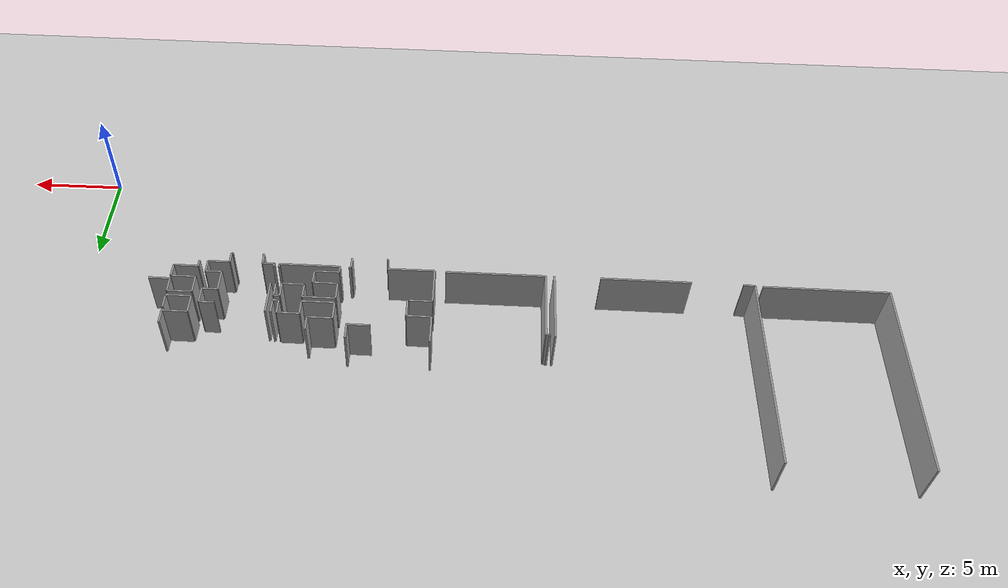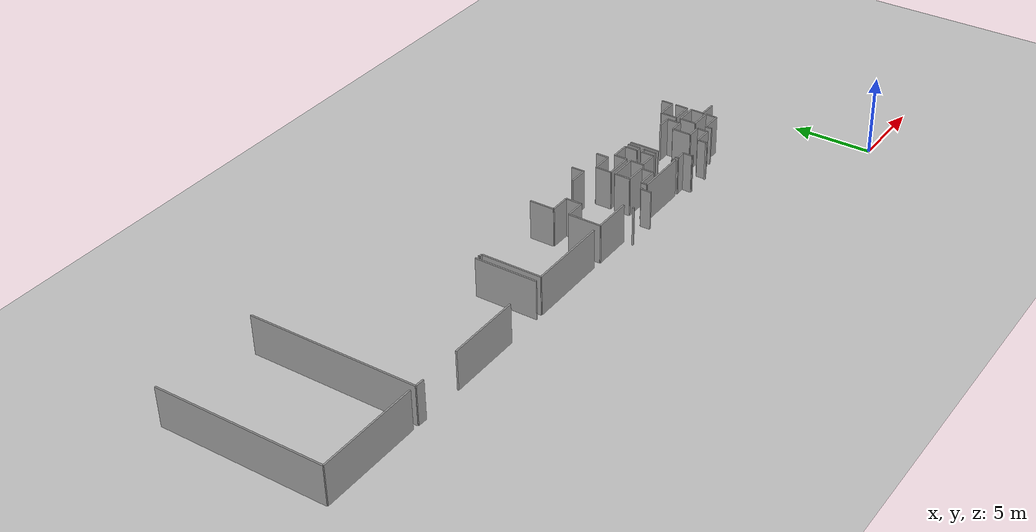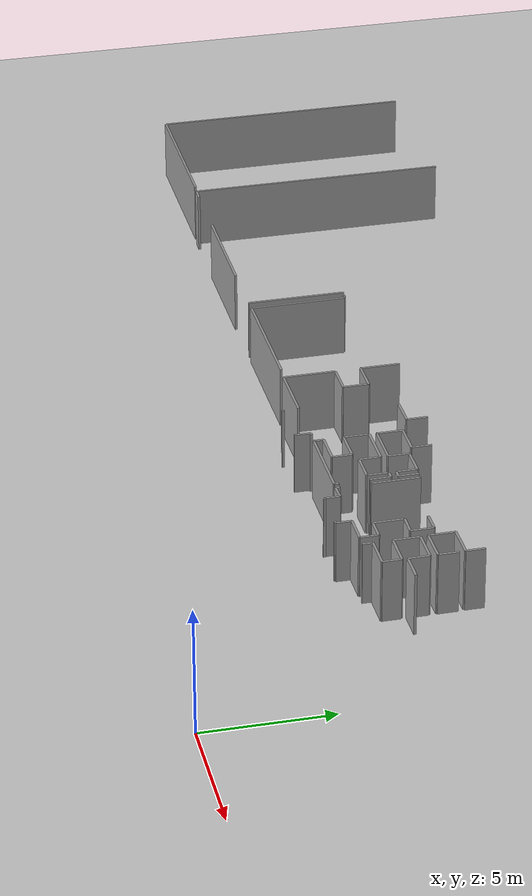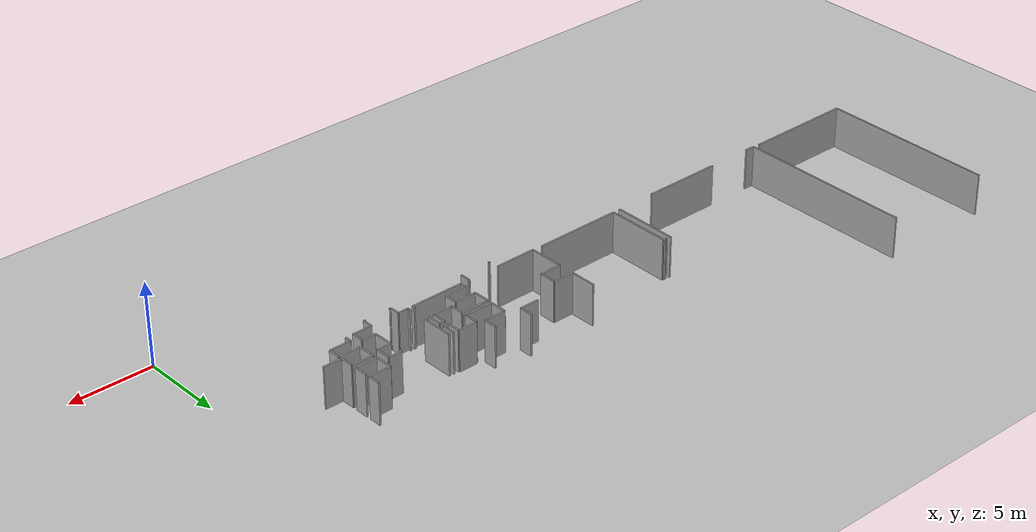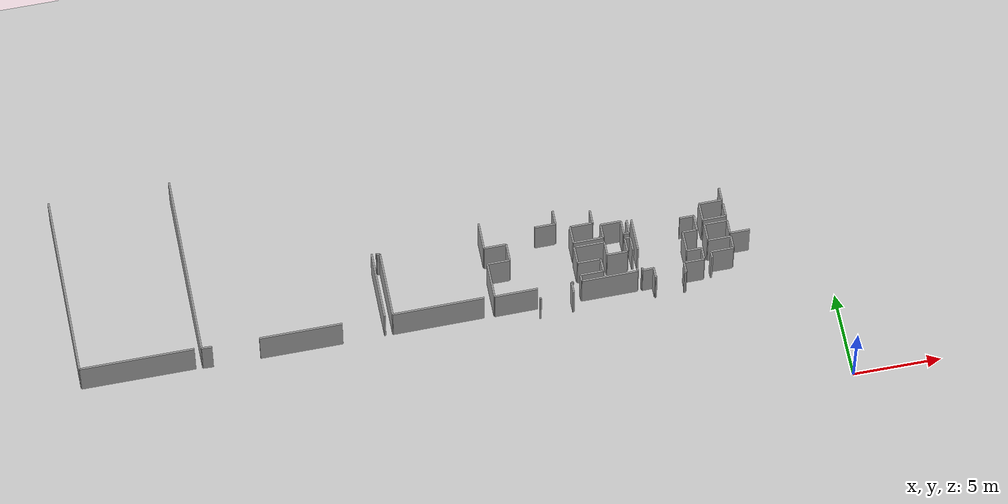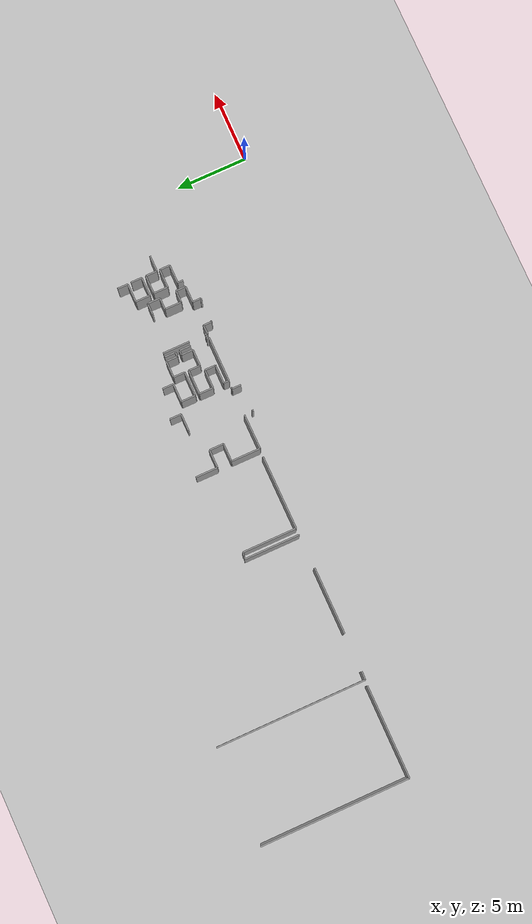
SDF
<sdf version="1.6">
 <world name="default">
  <model name="ground_plane">
   <static>1</static>
   <link name="link">
    <collision name="collision">
     <geometry><plane><normal>0 0 1</normal><size>100 100</size></plane></geometry>
     <surface><friction><ode><mu>100</mu><mu2>50</mu2></ode></friction></surface>
    </collision>
    <visual name="visual">
     <cast_shadows>0</cast_shadows>
     <geometry><plane><normal>0 0 1</normal><size>100 100</size></plane></geometry>
     <material>
      <script><uri>file://media/materials/scripts/gazebo.material</uri><name>Gazebo/Grey</name></script>
     </material>
    </visual>
   </link>
  </model>
  <model name="50052750">
   <static>1</static>
   <link name="Wall_20">
    <collision name="Wall_20_Collision">
     <geometry><box><size>10.5104266023 0.1 2.5</size></box></geometry>
     <pose>5.25521330114 0 1.25 0 0 0</pose>
    </collision>
    <visual name="Wall_20_Visual">
     <pose>5.25521330114 0 1.25 0 0 0</pose>
     <geometry><box><size>10.5104266023 0.1 2.5</size></box></geometry>
     <material>
      <script><uri>file://media/materials/scripts/gazebo.material</uri><name>Gazebo/Grey</name></script>
      <ambient>1 1 1 1</ambient>
     </material>
    </visual>
    <pose>0.0762039267883 -25.0130499225 0 0 0 1.57079632679</pose>
   </link>
   <link name="Wall_28">
    <collision name="Wall_28_Collision">
     <geometry><box><size>6.47669910417 0.1 2.5</size></box></geometry>
     <pose>3.23834955209 0 1.25 0 0 0</pose>
    </collision>
    <visual name="Wall_28_Visual">
     <pose>3.23834955209 0 1.25 0 0 0</pose>
     <geometry><box><size>6.47669910417 0.1 2.5</size></box></geometry>
     <material>
      <script><uri>file://media/materials/scripts/gazebo.material</uri><name>Gazebo/Grey</name></script>
      <ambient>1 1 1 1</ambient>
     </material>
    </visual>
    <pose>6.55290267107 -25.0152090337 0 0 0 3.14125928759</pose>
   </link>
   <link name="Wall_29">
    <collision name="Wall_29_Collision">
     <geometry><box><size>10.5544978733 0.1 2.5</size></box></geometry>
     <pose>5.27724893664 0 1.25 0 0 0</pose>
    </collision>
    <visual name="Wall_29_Visual">
     <pose>5.27724893664 0 1.25 0 0 0</pose>
     <geometry><box><size>10.5544978733 0.1 2.5</size></box></geometry>
     <material>
      <script><uri>file://media/materials/scripts/gazebo.material</uri><name>Gazebo/Grey</name></script>
      <ambient>1 1 1 1</ambient>
     </material>
    </visual>
    <pose>6.95233825399 -25.0538190233 0 0 0 1.57079632679</pose>
   </link>
   <link name="Wall_42">
    <collision name="Wall_42_Collision">
     <geometry><box><size>3.94520429638 0.1 2.5</size></box></geometry>
     <pose>1.97260214819 0 1.25 0 0 0</pose>
    </collision>
    <visual name="Wall_42_Visual">
     <pose>1.97260214819 0 1.25 0 0 0</pose>
     <geometry><box><size>3.94520429638 0.1 2.5</size></box></geometry>
     <material>
      <script><uri>file://media/materials/scripts/gazebo.material</uri><name>Gazebo/Grey</name></script>
      <ambient>1 1 1 1</ambient>
     </material>
    </visual>
    <pose>17.3099759831 -21.1312218919 0 0 0 -1.57079632679</pose>
   </link>
   <link name="Wall_43">
    <collision name="Wall_43_Collision">
     <geometry><box><size>4.69606698833 0.1 2.5</size></box></geometry>
     <pose>2.34803349417 0 1.25 0 0 0</pose>
    </collision>
    <visual name="Wall_43_Visual">
     <pose>2.34803349417 0 1.25 0 0 0</pose>
     <geometry><box><size>4.69606698833 0.1 2.5</size></box></geometry>
     <material>
      <script><uri>file://media/materials/scripts/gazebo.material</uri><name>Gazebo/Grey</name></script>
      <ambient>1 1 1 1</ambient>
     </material>
    </visual>
    <pose>14.9079012041 -25.0764261882 0 0 0 3.14159265359</pose>
   </link>
   <link name="Wall_44">
    <collision name="Wall_44_Collision">
     <geometry><box><size>0.590124576314 0.1 2.5</size></box></geometry>
     <pose>0.295062288157 0 1.25 0 0 0</pose>
    </collision>
    <visual name="Wall_44_Visual">
     <pose>0.295062288157 0 1.25 0 0 0</pose>
     <geometry><box><size>0.590124576314 0.1 2.5</size></box></geometry>
     <material>
      <script><uri>file://media/materials/scripts/gazebo.material</uri><name>Gazebo/Grey</name></script>
      <ambient>1 1 1 1</ambient>
     </material>
    </visual>
    <pose>7.54202964079 -25.0764261882 0 0 0 3.10327413715</pose>
   </link>
   <link name="Wall_45">
    <collision name="Wall_45_Collision">
     <geometry><box><size>3.8260721575 0.1 2.5</size></box></geometry>
     <pose>1.91303607875 0 1.25 0 0 0</pose>
    </collision>
    <visual name="Wall_45_Visual">
     <pose>1.91303607875 0 1.25 0 0 0</pose>
     <geometry><box><size>3.8260721575 0.1 2.5</size></box></geometry>
     <material>
      <script><uri>file://media/materials/scripts/gazebo.material</uri><name>Gazebo/Grey</name></script>
      <ambient>1 1 1 1</ambient>
     </material>
    </visual>
    <pose>17.7722798056 -25.0535650102 0 0 0 1.57079632679</pose>
   </link>
   <link name="Wall_46">
    <collision name="Wall_46_Collision">
     <geometry><box><size>0.175777057792 0.1 2.5</size></box></geometry>
     <pose>0.0878885288959 0 1.25 0 0 0</pose>
    </collision>
    <visual name="Wall_46_Visual">
     <pose>0.0878885288959 0 1.25 0 0 0</pose>
     <geometry><box><size>0.175777057792 0.1 2.5</size></box></geometry>
     <material>
      <script><uri>file://media/materials/scripts/gazebo.material</uri><name>Gazebo/Grey</name></script>
      <ambient>1 1 1 1</ambient>
     </material>
    </visual>
    <pose>17.7722798056 -21.2274928527 0 0 0 3.14159265359</pose>
   </link>
   <link name="Wall_47">
    <collision name="Wall_47_Collision">
     <geometry><box><size>0.0798871165831 0.1 2.5</size></box></geometry>
     <pose>0.0399435582916 0 1.25 0 0 0</pose>
    </collision>
    <visual name="Wall_47_Visual">
     <pose>0.0399435582916 0 1.25 0 0 0</pose>
     <geometry><box><size>0.0798871165831 0.1 2.5</size></box></geometry>
     <material>
      <script><uri>file://media/materials/scripts/gazebo.material</uri><name>Gazebo/Grey</name></script>
      <ambient>1 1 1 1</ambient>
     </material>
    </visual>
    <pose>17.5965027478 -21.2274928527 0 0 0 1.57079632679</pose>
   </link>
   <link name="Wall_55">
    <collision name="Wall_55_Collision">
     <geometry><box><size>5.20264343984 0.1 2.5</size></box></geometry>
     <pose>2.60132171992 0 1.25 0 0 0</pose>
    </collision>
    <visual name="Wall_55_Visual">
     <pose>2.60132171992 0 1.25 0 0 0</pose>
     <geometry><box><size>5.20264343984 0.1 2.5</size></box></geometry>
     <material>
      <script><uri>file://media/materials/scripts/gazebo.material</uri><name>Gazebo/Grey</name></script>
      <ambient>1 1 1 1</ambient>
     </material>
    </visual>
    <pose>22.974848894 -25.0257505769 0 0 0 -3.13624641641</pose>
   </link>
   <link name="Wall_339">
    <collision name="Wall_339_Collision">
     <geometry><box><size>0.176920116694 0.1 2.5</size></box></geometry>
     <pose>0.0884600583468 0 1.25 0 0 0</pose>
    </collision>
    <visual name="Wall_339_Visual">
     <pose>0.0884600583468 0 1.25 0 0 0</pose>
     <geometry><box><size>0.176920116694 0.1 2.5</size></box></geometry>
     <material>
      <script><uri>file://media/materials/scripts/gazebo.material</uri><name>Gazebo/Grey</name></script>
      <ambient>1 1 1 1</ambient>
     </material>
    </visual>
    <pose>32.0086974082 -25.0638525403 0 0 0 1.57079632679</pose>
   </link>
   <link name="Wall_340">
    <collision name="Wall_340_Collision">
     <geometry><box><size>1.88338005057 0.1 2.5</size></box></geometry>
     <pose>0.941690025287 0 1.25 0 0 0</pose>
    </collision>
    <visual name="Wall_340_Visual">
     <pose>0.941690025287 0 1.25 0 0 0</pose>
     <geometry><box><size>1.88338005057 0.1 2.5</size></box></geometry>
     <material>
      <script><uri>file://media/materials/scripts/gazebo.material</uri><name>Gazebo/Grey</name></script>
      <ambient>1 1 1 1</ambient>
     </material>
    </visual>
    <pose>32.0086974082 -23.725965599 0 0 0 1.57079632679</pose>
   </link>
   <link name="Wall_346">
    <collision name="Wall_346_Collision">
     <geometry><box><size>0.814492970823 0.1 2.5</size></box></geometry>
     <pose>0.407246485411 0 1.25 0 0 0</pose>
    </collision>
    <visual name="Wall_346_Visual">
     <pose>0.407246485411 0 1.25 0 0 0</pose>
     <geometry><box><size>0.814492970823 0.1 2.5</size></box></geometry>
     <material>
      <script><uri>file://media/materials/scripts/gazebo.material</uri><name>Gazebo/Grey</name></script>
      <ambient>1 1 1 1</ambient>
     </material>
    </visual>
    <pose>34.6923456966 -22.2727567152 0 0 0 0.0</pose>
   </link>
   <link name="Wall_347">
    <collision name="Wall_347_Collision">
     <geometry><box><size>0.884092557289 0.1 2.5</size></box></geometry>
     <pose>0.442046278645 0 1.25 0 0 0</pose>
    </collision>
    <visual name="Wall_347_Visual">
     <pose>0.442046278645 0 1.25 0 0 0</pose>
     <geometry><box><size>0.884092557289 0.1 2.5</size></box></geometry>
     <material>
      <script><uri>file://media/materials/scripts/gazebo.material</uri><name>Gazebo/Grey</name></script>
      <ambient>1 1 1 1</ambient>
     </material>
    </visual>
    <pose>35.5068386674 -22.2727567152 0 0 0 -1.57079632679</pose>
   </link>
   <link name="Wall_348">
    <collision name="Wall_348_Collision">
     <geometry><box><size>0.827193625288 0.1 2.5</size></box></geometry>
     <pose>0.413596812644 0 1.25 0 0 0</pose>
    </collision>
    <visual name="Wall_348_Visual">
     <pose>0.413596812644 0 1.25 0 0 0</pose>
     <geometry><box><size>0.827193625288 0.1 2.5</size></box></geometry>
     <material>
      <script><uri>file://media/materials/scripts/gazebo.material</uri><name>Gazebo/Grey</name></script>
      <ambient>1 1 1 1</ambient>
     </material>
    </visual>
    <pose>35.5068386674 -23.1568492724 0 0 0 3.14159265359</pose>
   </link>
   <link name="Wall_349">
    <collision name="Wall_349_Collision">
     <geometry><box><size>1.18077984559 0.1 2.5</size></box></geometry>
     <pose>0.590389922793 0 1.25 0 0 0</pose>
    </collision>
    <visual name="Wall_349_Visual">
     <pose>0.590389922793 0 1.25 0 0 0</pose>
     <geometry><box><size>1.18077984559 0.1 2.5</size></box></geometry>
     <material>
      <script><uri>file://media/materials/scripts/gazebo.material</uri><name>Gazebo/Grey</name></script>
      <ambient>1 1 1 1</ambient>
     </material>
    </visual>
    <pose>34.6796450421 -23.1568492724 0 0 0 -1.57079632679</pose>
   </link>
   <link name="Wall_350">
    <collision name="Wall_350_Collision">
     <geometry><box><size>0.846244606985 0.1 2.5</size></box></geometry>
     <pose>0.423122303492 0 1.25 0 0 0</pose>
    </collision>
    <visual name="Wall_350_Visual">
     <pose>0.423122303492 0 1.25 0 0 0</pose>
     <geometry><box><size>0.846244606985 0.1 2.5</size></box></geometry>
     <material>
      <script><uri>file://media/materials/scripts/gazebo.material</uri><name>Gazebo/Grey</name></script>
      <ambient>1 1 1 1</ambient>
     </material>
    </visual>
    <pose>34.6796450421 -24.337629118 0 0 0 0.0</pose>
   </link>
   <link name="Wall_351">
    <collision name="Wall_351_Collision">
     <geometry><box><size>0.699171028283 0.1 2.5</size></box></geometry>
     <pose>0.349585514142 0 1.25 0 0 0</pose>
    </collision>
    <visual name="Wall_351_Visual">
     <pose>0.349585514142 0 1.25 0 0 0</pose>
     <geometry><box><size>0.699171028283 0.1 2.5</size></box></geometry>
     <material>
      <script><uri>file://media/materials/scripts/gazebo.material</uri><name>Gazebo/Grey</name></script>
      <ambient>1 1 1 1</ambient>
     </material>
    </visual>
    <pose>35.5258896491 -24.337629118 0 0 0 -1.57079632679</pose>
   </link>
   <link name="Wall_352">
    <collision name="Wall_352_Collision">
     <geometry><box><size>1.14915521597 0.1 2.5</size></box></geometry>
     <pose>0.574577607984 0 1.25 0 0 0</pose>
    </collision>
    <visual name="Wall_352_Visual">
     <pose>0.574577607984 0 1.25 0 0 0</pose>
     <geometry><box><size>1.14915521597 0.1 2.5</size></box></geometry>
     <material>
      <script><uri>file://media/materials/scripts/gazebo.material</uri><name>Gazebo/Grey</name></script>
      <ambient>1 1 1 1</ambient>
     </material>
    </visual>
    <pose>35.5258896491 -25.0368001463 0 0 0 3.14159265359</pose>
   </link>
   <link name="Wall_353">
    <collision name="Wall_353_Collision">
     <geometry><box><size>0.596803753297 0.1 2.5</size></box></geometry>
     <pose>0.298401876649 0 1.25 0 0 0</pose>
    </collision>
    <visual name="Wall_353_Visual">
     <pose>0.298401876649 0 1.25 0 0 0</pose>
     <geometry><box><size>0.596803753297 0.1 2.5</size></box></geometry>
     <material>
      <script><uri>file://media/materials/scripts/gazebo.material</uri><name>Gazebo/Grey</name></script>
      <ambient>1 1 1 1</ambient>
     </material>
    </visual>
    <pose>34.3767344331 -25.0368001463 0 0 0 -1.57079632679</pose>
   </link>
   <link name="Wall_354">
    <collision name="Wall_354_Collision">
     <geometry><box><size>0.105034412423 0.1 2.5</size></box></geometry>
     <pose>0.0525172062116 0 1.25 0 0 0</pose>
    </collision>
    <visual name="Wall_354_Visual">
     <pose>0.0525172062116 0 1.25 0 0 0</pose>
     <geometry><box><size>0.105034412423 0.1 2.5</size></box></geometry>
     <material>
      <script><uri>file://media/materials/scripts/gazebo.material</uri><name>Gazebo/Grey</name></script>
      <ambient>1 1 1 1</ambient>
     </material>
    </visual>
    <pose>34.3767344331 -25.6336038996 0 0 0 3.14159265359</pose>
   </link>
   <link name="Wall_355">
    <collision name="Wall_355_Collision">
     <geometry><box><size>0.0820462278421 0.1 2.5</size></box></geometry>
     <pose>0.0410231139211 0 1.25 0 0 0</pose>
    </collision>
    <visual name="Wall_355_Visual">
     <pose>0.0410231139211 0 1.25 0 0 0</pose>
     <geometry><box><size>0.0820462278421 0.1 2.5</size></box></geometry>
     <material>
      <script><uri>file://media/materials/scripts/gazebo.material</uri><name>Gazebo/Grey</name></script>
      <ambient>1 1 1 1</ambient>
     </material>
    </visual>
    <pose>32.7158698488 -25.6336038996 0 0 0 3.14159265359</pose>
   </link>
   <link name="Wall_356">
    <collision name="Wall_356_Collision">
     <geometry><box><size>0.588802340985 0.1 2.5</size></box></geometry>
     <pose>0.294401170492 0 1.25 0 0 0</pose>
    </collision>
    <visual name="Wall_356_Visual">
     <pose>0.294401170492 0 1.25 0 0 0</pose>
     <geometry><box><size>0.588802340985 0.1 2.5</size></box></geometry>
     <material>
      <script><uri>file://media/materials/scripts/gazebo.material</uri><name>Gazebo/Grey</name></script>
      <ambient>1 1 1 1</ambient>
     </material>
    </visual>
    <pose>32.6338236209 -25.6336038996 0 0 0 1.57079632679</pose>
   </link>
   <link name="Wall_357">
    <collision name="Wall_357_Collision">
     <geometry><box><size>0.625416438683 0.1 2.5</size></box></geometry>
     <pose>0.312708219342 0 1.25 0 0 0</pose>
    </collision>
    <visual name="Wall_357_Visual">
     <pose>0.312708219342 0 1.25 0 0 0</pose>
     <geometry><box><size>0.625416438683 0.1 2.5</size></box></geometry>
     <material>
      <script><uri>file://media/materials/scripts/gazebo.material</uri><name>Gazebo/Grey</name></script>
      <ambient>1 1 1 1</ambient>
     </material>
    </visual>
    <pose>32.6338236209 -25.0448015586 0 0 0 -3.11112666653</pose>
   </link>
   <link name="Wall_358">
    <collision name="Wall_358_Collision">
     <geometry><box><size>2.06195125235 0.1 2.5</size></box></geometry>
     <pose>1.03097562617 0 1.25 0 0 0</pose>
    </collision>
    <visual name="Wall_358_Visual">
     <pose>1.03097562617 0 1.25 0 0 0</pose>
     <geometry><box><size>2.06195125235 0.1 2.5</size></box></geometry>
     <material>
      <script><uri>file://media/materials/scripts/gazebo.material</uri><name>Gazebo/Grey</name></script>
      <ambient>1 1 1 1</ambient>
     </material>
    </visual>
    <pose>23.5597140321 -25.0699488545 0 0 0 1.57079632679</pose>
   </link>
   <link name="Wall_359">
    <collision name="Wall_359_Collision">
     <geometry><box><size>1.26866837448 0.1 2.5</size></box></geometry>
     <pose>0.634334187241 0 1.25 0 0 0</pose>
    </collision>
    <visual name="Wall_359_Visual">
     <pose>0.634334187241 0 1.25 0 0 0</pose>
     <geometry><box><size>1.26866837448 0.1 2.5</size></box></geometry>
     <material>
      <script><uri>file://media/materials/scripts/gazebo.material</uri><name>Gazebo/Grey</name></script>
      <ambient>1 1 1 1</ambient>
     </material>
    </visual>
    <pose>23.5597140321 -23.0079976021 0 0 0 0.0</pose>
   </link>
   <link name="Wall_360">
    <collision name="Wall_360_Collision">
     <geometry><box><size>1.00830495795 0.1 2.5</size></box></geometry>
     <pose>0.504152478977 0 1.25 0 0 0</pose>
    </collision>
    <visual name="Wall_360_Visual">
     <pose>0.504152478977 0 1.25 0 0 0</pose>
     <geometry><box><size>1.00830495795 0.1 2.5</size></box></geometry>
     <material>
      <script><uri>file://media/materials/scripts/gazebo.material</uri><name>Gazebo/Grey</name></script>
      <ambient>1 1 1 1</ambient>
     </material>
    </visual>
    <pose>24.8283824065 -23.0079976021 0 0 0 1.57079632679</pose>
   </link>
   <link name="Wall_361">
    <collision name="Wall_361_Collision">
     <geometry><box><size>1.27730481952 0.1 2.5</size></box></geometry>
     <pose>0.638652409759 0 1.25 0 0 0</pose>
    </collision>
    <visual name="Wall_361_Visual">
     <pose>0.638652409759 0 1.25 0 0 0</pose>
     <geometry><box><size>1.27730481952 0.1 2.5</size></box></geometry>
     <material>
      <script><uri>file://media/materials/scripts/gazebo.material</uri><name>Gazebo/Grey</name></script>
      <ambient>1 1 1 1</ambient>
     </material>
    </visual>
    <pose>24.8283824065 -21.9996926442 0 0 0 3.14159265359</pose>
   </link>
   <link name="Wall_362">
    <collision name="Wall_362_Collision">
     <geometry><box><size>1.56408559733 0.1 2.5</size></box></geometry>
     <pose>0.782042798665 0 1.25 0 0 0</pose>
    </collision>
    <visual name="Wall_362_Visual">
     <pose>0.782042798665 0 1.25 0 0 0</pose>
     <geometry><box><size>1.56408559733 0.1 2.5</size></box></geometry>
     <material>
      <script><uri>file://media/materials/scripts/gazebo.material</uri><name>Gazebo/Grey</name></script>
      <ambient>1 1 1 1</ambient>
     </material>
    </visual>
    <pose>23.551077587 -21.9996926442 0 0 0 1.57079632679</pose>
   </link>
   <link name="Wall_365">
    <collision name="Wall_365_Collision">
     <geometry><box><size>1.18713017282 0.1 2.5</size></box></geometry>
     <pose>0.593565086409 0 1.25 0 0 0</pose>
    </collision>
    <visual name="Wall_365_Visual">
     <pose>0.593565086409 0 1.25 0 0 0</pose>
     <geometry><box><size>1.18713017282 0.1 2.5</size></box></geometry>
     <material>
      <script><uri>file://media/materials/scripts/gazebo.material</uri><name>Gazebo/Grey</name></script>
      <ambient>1 1 1 1</ambient>
     </material>
    </visual>
    <pose>26.599107652 -21.2687699797 0 0 0 0.0</pose>
   </link>
   <link name="Wall_366">
    <collision name="Wall_366_Collision">
     <geometry><box><size>0.824907507484 0.1 2.5</size></box></geometry>
     <pose>0.412453753742 0 1.25 0 0 0</pose>
    </collision>
    <visual name="Wall_366_Visual">
     <pose>0.412453753742 0 1.25 0 0 0</pose>
     <geometry><box><size>0.824907507484 0.1 2.5</size></box></geometry>
     <material>
      <script><uri>file://media/materials/scripts/gazebo.material</uri><name>Gazebo/Grey</name></script>
      <ambient>1 1 1 1</ambient>
     </material>
    </visual>
    <pose>27.7862378248 -21.2687699797 0 0 0 1.57079632679</pose>
   </link>
   <link name="Wall_369">
    <collision name="Wall_369_Collision">
     <geometry><box><size>0.113162831281 0.1 2.5</size></box></geometry>
     <pose>0.0565814156403 0 1.25 0 0 0</pose>
    </collision>
    <visual name="Wall_369_Visual">
     <pose>0.0565814156403 0 1.25 0 0 0</pose>
     <geometry><box><size>0.113162831281 0.1 2.5</size></box></geometry>
     <material>
      <script><uri>file://media/materials/scripts/gazebo.material</uri><name>Gazebo/Grey</name></script>
      <ambient>1 1 1 1</ambient>
     </material>
    </visual>
    <pose>28.0647631772 -25.0324819238 0 0 0 3.14159265359</pose>
   </link>
   <link name="Wall_370">
    <collision name="Wall_370_Collision">
     <geometry><box><size>0.639096932665 0.1 2.5</size></box></geometry>
     <pose>0.319548466332 0 1.25 0 0 0</pose>
    </collision>
    <visual name="Wall_370_Visual">
     <pose>0.319548466332 0 1.25 0 0 0</pose>
     <geometry><box><size>0.639096932665 0.1 2.5</size></box></geometry>
     <material>
      <script><uri>file://media/materials/scripts/gazebo.material</uri><name>Gazebo/Grey</name></script>
      <ambient>1 1 1 1</ambient>
     </material>
    </visual>
    <pose>27.951600346 -25.0324819238 0 0 0 -1.57079632679</pose>
   </link>
   <link name="Wall_371">
    <collision name="Wall_371_Collision">
     <geometry><box><size>0.101732242262 0.1 2.5</size></box></geometry>
     <pose>0.0508661211312 0 1.25 0 0 0</pose>
    </collision>
    <visual name="Wall_371_Visual">
     <pose>0.0508661211312 0 1.25 0 0 0</pose>
     <geometry><box><size>0.101732242262 0.1 2.5</size></box></geometry>
     <material>
      <script><uri>file://media/materials/scripts/gazebo.material</uri><name>Gazebo/Grey</name></script>
      <ambient>1 1 1 1</ambient>
     </material>
    </visual>
    <pose>26.1144506776 -25.6715788565 0 0 0 3.14159265359</pose>
   </link>
   <link name="Wall_373">
    <collision name="Wall_373_Collision">
     <geometry><box><size>2.45305414606 0.1 2.5</size></box></geometry>
     <pose>1.22652707303 0 1.25 0 0 0</pose>
    </collision>
    <visual name="Wall_373_Visual">
     <pose>1.22652707303 0 1.25 0 0 0</pose>
     <geometry><box><size>2.45305414606 0.1 2.5</size></box></geometry>
     <material>
      <script><uri>file://media/materials/scripts/gazebo.material</uri><name>Gazebo/Grey</name></script>
      <ambient>1 1 1 1</ambient>
     </material>
    </visual>
    <pose>26.0127184354 -25.0543270495 0 0 0 -3.13522430228</pose>
   </link>
   <link name="Wall_374">
    <collision name="Wall_374_Collision">
     <geometry><box><size>1.02760995274 0.1 2.5</size></box></geometry>
     <pose>0.51380497637 0 1.25 0 0 0</pose>
    </collision>
    <visual name="Wall_374_Visual">
     <pose>0.51380497637 0 1.25 0 0 0</pose>
     <geometry><box><size>1.02760995274 0.1 2.5</size></box></geometry>
     <material>
      <script><uri>file://media/materials/scripts/gazebo.material</uri><name>Gazebo/Grey</name></script>
      <ambient>1 1 1 1</ambient>
     </material>
    </visual>
    <pose>35.9492024624 -22.6239298111 0 0 0 1.57079632679</pose>
   </link>
   <link name="Wall_375">
    <collision name="Wall_375_Collision">
     <geometry><box><size>1.30613530515 0.1 2.5</size></box></geometry>
     <pose>0.653067652576 0 1.25 0 0 0</pose>
    </collision>
    <visual name="Wall_375_Visual">
     <pose>0.653067652576 0 1.25 0 0 0</pose>
     <geometry><box><size>1.30613530515 0.1 2.5</size></box></geometry>
     <material>
      <script><uri>file://media/materials/scripts/gazebo.material</uri><name>Gazebo/Grey</name></script>
      <ambient>1 1 1 1</ambient>
     </material>
    </visual>
    <pose>35.9492024624 -21.5963198584 0 0 0 0.0</pose>
   </link>
   <link name="Wall_376">
    <collision name="Wall_376_Collision">
     <geometry><box><size>0.749084600329 0.1 2.5</size></box></geometry>
     <pose>0.374542300165 0 1.25 0 0 0</pose>
    </collision>
    <visual name="Wall_376_Visual">
     <pose>0.374542300165 0 1.25 0 0 0</pose>
     <geometry><box><size>0.749084600329 0.1 2.5</size></box></geometry>
     <material>
      <script><uri>file://media/materials/scripts/gazebo.material</uri><name>Gazebo/Grey</name></script>
      <ambient>1 1 1 1</ambient>
     </material>
    </visual>
    <pose>37.2553377676 -21.5963198584 0 0 0 1.57079632679</pose>
   </link>
   <link name="Wall_385">
    <collision name="Wall_385_Collision">
     <geometry><box><size>0.788837648804 0.1 2.5</size></box></geometry>
     <pose>0.394418824402 0 1.25 0 0 0</pose>
    </collision>
    <visual name="Wall_385_Visual">
     <pose>0.394418824402 0 1.25 0 0 0</pose>
     <geometry><box><size>0.788837648804 0.1 2.5</size></box></geometry>
     <material>
      <script><uri>file://media/materials/scripts/gazebo.material</uri><name>Gazebo/Grey</name></script>
      <ambient>1 1 1 1</ambient>
     </material>
    </visual>
    <pose>37.2746427623 -21.8258206845 0 0 0 -1.57079632679</pose>
   </link>
   <link name="Wall_386">
    <collision name="Wall_386_Collision">
     <geometry><box><size>1.32547272662 0.1 2.5</size></box></geometry>
     <pose>0.662736363308 0 1.25 0 0 0</pose>
    </collision>
    <visual name="Wall_386_Visual">
     <pose>0.662736363308 0 1.25 0 0 0</pose>
     <geometry><box><size>1.32547272662 0.1 2.5</size></box></geometry>
     <material>
      <script><uri>file://media/materials/scripts/gazebo.material</uri><name>Gazebo/Grey</name></script>
      <ambient>1 1 1 1</ambient>
     </material>
    </visual>
    <pose>37.2746427623 -22.6146583333 0 0 0 -3.13459775043</pose>
   </link>
   <link name="Wall_387">
    <collision name="Wall_387_Collision">
     <geometry><box><size>0.395371373487 0.1 2.5</size></box></geometry>
     <pose>0.197685686743 0 1.25 0 0 0</pose>
    </collision>
    <visual name="Wall_387_Visual">
     <pose>0.197685686743 0 1.25 0 0 0</pose>
     <geometry><box><size>0.395371373487 0.1 2.5</size></box></geometry>
     <material>
      <script><uri>file://media/materials/scripts/gazebo.material</uri><name>Gazebo/Grey</name></script>
      <ambient>1 1 1 1</ambient>
     </material>
    </visual>
    <pose>35.9842562687 -25.0547080691 0 0 0 1.57079632679</pose>
   </link>
   <link name="Wall_388">
    <collision name="Wall_388_Collision">
     <geometry><box><size>1.29584777504 0.1 2.5</size></box></geometry>
     <pose>0.647923887518 0 1.25 0 0 0</pose>
    </collision>
    <visual name="Wall_388_Visual">
     <pose>0.647923887518 0 1.25 0 0 0</pose>
     <geometry><box><size>1.29584777504 0.1 2.5</size></box></geometry>
     <material>
      <script><uri>file://media/materials/scripts/gazebo.material</uri><name>Gazebo/Grey</name></script>
      <ambient>1 1 1 1</ambient>
     </material>
    </visual>
    <pose>35.9842562687 -24.6593366956 0 0 0 0.0</pose>
   </link>
   <link name="Wall_389">
    <collision name="Wall_389_Collision">
     <geometry><box><size>0.730160625177 0.1 2.5</size></box></geometry>
     <pose>0.365080312589 0 1.25 0 0 0</pose>
    </collision>
    <visual name="Wall_389_Visual">
     <pose>0.365080312589 0 1.25 0 0 0</pose>
     <geometry><box><size>0.730160625177 0.1 2.5</size></box></geometry>
     <material>
      <script><uri>file://media/materials/scripts/gazebo.material</uri><name>Gazebo/Grey</name></script>
      <ambient>1 1 1 1</ambient>
     </material>
    </visual>
    <pose>37.2801040438 -24.6593366956 0 0 0 1.57079632679</pose>
   </link>
   <link name="Wall_390">
    <collision name="Wall_390_Collision">
     <geometry><box><size>1.30130905646 0.1 2.5</size></box></geometry>
     <pose>0.650654528228 0 1.25 0 0 0</pose>
    </collision>
    <visual name="Wall_390_Visual">
     <pose>0.650654528228 0 1.25 0 0 0</pose>
     <geometry><box><size>1.30130905646 0.1 2.5</size></box></geometry>
     <material>
      <script><uri>file://media/materials/scripts/gazebo.material</uri><name>Gazebo/Grey</name></script>
      <ambient>1 1 1 1</ambient>
     </material>
    </visual>
    <pose>37.2801040438 -23.9291760704 0 0 0 3.14159265359</pose>
   </link>
   <link name="Wall_391">
    <collision name="Wall_391_Collision">
     <geometry><box><size>1.01592535063 0.1 2.5</size></box></geometry>
     <pose>0.507962675317 0 1.25 0 0 0</pose>
    </collision>
    <visual name="Wall_391_Visual">
     <pose>0.507962675317 0 1.25 0 0 0</pose>
     <geometry><box><size>1.01592535063 0.1 2.5</size></box></geometry>
     <material>
      <script><uri>file://media/materials/scripts/gazebo.material</uri><name>Gazebo/Grey</name></script>
      <ambient>1 1 1 1</ambient>
     </material>
    </visual>
    <pose>35.9787949873 -23.9291760704 0 0 0 1.57079632679</pose>
   </link>
   <link name="Wall_392">
    <collision name="Wall_392_Collision">
     <geometry><box><size>1.30130905646 0.1 2.5</size></box></geometry>
     <pose>0.650654528228 0 1.25 0 0 0</pose>
    </collision>
    <visual name="Wall_392_Visual">
     <pose>0.650654528228 0 1.25 0 0 0</pose>
     <geometry><box><size>1.30130905646 0.1 2.5</size></box></geometry>
     <material>
      <script><uri>file://media/materials/scripts/gazebo.material</uri><name>Gazebo/Grey</name></script>
      <ambient>1 1 1 1</ambient>
     </material>
    </visual>
    <pose>35.9787949873 -22.9132507198 0 0 0 0.0</pose>
   </link>
   <link name="Wall_393">
    <collision name="Wall_393_Collision">
     <geometry><box><size>0.807253597778 0.1 2.5</size></box></geometry>
     <pose>0.403626798889 0 1.25 0 0 0</pose>
    </collision>
    <visual name="Wall_393_Visual">
     <pose>0.403626798889 0 1.25 0 0 0</pose>
     <geometry><box><size>0.807253597778 0.1 2.5</size></box></geometry>
     <material>
      <script><uri>file://media/materials/scripts/gazebo.material</uri><name>Gazebo/Grey</name></script>
      <ambient>1 1 1 1</ambient>
     </material>
    </visual>
    <pose>37.2801040438 -22.9132507198 0 0 0 -1.57079632679</pose>
   </link>
   <link name="Wall_394">
    <collision name="Wall_394_Collision">
     <geometry><box><size>1.12565900521 0.1 2.5</size></box></geometry>
     <pose>0.562829502604 0 1.25 0 0 0</pose>
    </collision>
    <visual name="Wall_394_Visual">
     <pose>0.562829502604 0 1.25 0 0 0</pose>
     <geometry><box><size>1.12565900521 0.1 2.5</size></box></geometry>
     <material>
      <script><uri>file://media/materials/scripts/gazebo.material</uri><name>Gazebo/Grey</name></script>
      <ambient>1 1 1 1</ambient>
     </material>
    </visual>
    <pose>37.2801040438 -23.7205043176 0 0 0 0.0</pose>
   </link>
   <link name="Wall_400">
    <collision name="Wall_400_Collision">
     <geometry><box><size>1.01021005612 0.1 2.5</size></box></geometry>
     <pose>0.505105028062 0 1.25 0 0 0</pose>
    </collision>
    <visual name="Wall_400_Visual">
     <pose>0.505105028062 0 1.25 0 0 0</pose>
     <geometry><box><size>1.01021005612 0.1 2.5</size></box></geometry>
     <material>
      <script><uri>file://media/materials/scripts/gazebo.material</uri><name>Gazebo/Grey</name></script>
      <ambient>1 1 1 1</ambient>
     </material>
    </visual>
    <pose>28.5442128833 -22.6277400074 0 0 0 1.57079632679</pose>
   </link>
   <link name="Wall_401">
    <collision name="Wall_401_Collision">
     <geometry><box><size>1.29584777504 0.1 2.5</size></box></geometry>
     <pose>0.647923887518 0 1.25 0 0 0</pose>
    </collision>
    <visual name="Wall_401_Visual">
     <pose>0.647923887518 0 1.25 0 0 0</pose>
     <geometry><box><size>1.29584777504 0.1 2.5</size></box></geometry>
     <material>
      <script><uri>file://media/materials/scripts/gazebo.material</uri><name>Gazebo/Grey</name></script>
      <ambient>1 1 1 1</ambient>
     </material>
    </visual>
    <pose>28.5442128833 -21.6175299513 0 0 0 0.0</pose>
   </link>
   <link name="Wall_402">
    <collision name="Wall_402_Collision">
     <geometry><box><size>0.779820184134 0.1 2.5</size></box></geometry>
     <pose>0.389910092067 0 1.25 0 0 0</pose>
    </collision>
    <visual name="Wall_402_Visual">
     <pose>0.389910092067 0 1.25 0 0 0</pose>
     <geometry><box><size>0.779820184134 0.1 2.5</size></box></geometry>
     <material>
      <script><uri>file://media/materials/scripts/gazebo.material</uri><name>Gazebo/Grey</name></script>
      <ambient>1 1 1 1</ambient>
     </material>
    </visual>
    <pose>29.8400606583 -21.6175299513 0 0 0 1.57079632679</pose>
   </link>
   <link name="Wall_407">
    <collision name="Wall_407_Collision">
     <geometry><box><size>0.788837648804 0.1 2.5</size></box></geometry>
     <pose>0.394418824402 0 1.25 0 0 0</pose>
    </collision>
    <visual name="Wall_407_Visual">
     <pose>0.394418824402 0 1.25 0 0 0</pose>
     <geometry><box><size>0.788837648804 0.1 2.5</size></box></geometry>
     <material>
      <script><uri>file://media/materials/scripts/gazebo.material</uri><name>Gazebo/Grey</name></script>
      <ambient>1 1 1 1</ambient>
     </material>
    </visual>
    <pose>31.7343632717 -21.8258206845 0 0 0 -1.57079632679</pose>
   </link>
   <link name="Wall_408">
    <collision name="Wall_408_Collision">
     <geometry><box><size>0.313833171823 0.1 2.5</size></box></geometry>
     <pose>0.156916585912 0 1.25 0 0 0</pose>
    </collision>
    <visual name="Wall_408_Visual">
     <pose>0.156916585912 0 1.25 0 0 0</pose>
     <geometry><box><size>0.313833171823 0.1 2.5</size></box></geometry>
     <material>
      <script><uri>file://media/materials/scripts/gazebo.material</uri><name>Gazebo/Grey</name></script>
      <ambient>1 1 1 1</ambient>
     </material>
    </visual>
    <pose>31.7343632717 -22.6146583333 0 0 0 3.14159265359</pose>
   </link>
   <link name="Wall_409">
    <collision name="Wall_409_Collision">
     <geometry><box><size>0.797220080751 0.1 2.5</size></box></geometry>
     <pose>0.398610040375 0 1.25 0 0 0</pose>
    </collision>
    <visual name="Wall_409_Visual">
     <pose>0.398610040375 0 1.25 0 0 0</pose>
     <geometry><box><size>0.797220080751 0.1 2.5</size></box></geometry>
     <material>
      <script><uri>file://media/materials/scripts/gazebo.material</uri><name>Gazebo/Grey</name></script>
      <ambient>1 1 1 1</ambient>
     </material>
    </visual>
    <pose>31.4205300999 -22.6146583333 0 0 0 1.57079632679</pose>
   </link>
   <link name="Wall_410">
    <collision name="Wall_410_Collision">
     <geometry><box><size>1.16668211913 0.1 2.5</size></box></geometry>
     <pose>0.583341059565 0 1.25 0 0 0</pose>
    </collision>
    <visual name="Wall_410_Visual">
     <pose>0.583341059565 0 1.25 0 0 0</pose>
     <geometry><box><size>1.16668211913 0.1 2.5</size></box></geometry>
     <material>
      <script><uri>file://media/materials/scripts/gazebo.material</uri><name>Gazebo/Grey</name></script>
      <ambient>1 1 1 1</ambient>
     </material>
    </visual>
    <pose>31.4205300999 -21.8174382526 0 0 0 3.14159265359</pose>
   </link>
   <link name="Wall_411">
    <collision name="Wall_411_Collision">
     <geometry><box><size>0.809666722126 0.1 2.5</size></box></geometry>
     <pose>0.404833361063 0 1.25 0 0 0</pose>
    </collision>
    <visual name="Wall_411_Visual">
     <pose>0.404833361063 0 1.25 0 0 0</pose>
     <geometry><box><size>0.809666722126 0.1 2.5</size></box></geometry>
     <material>
      <script><uri>file://media/materials/scripts/gazebo.material</uri><name>Gazebo/Grey</name></script>
      <ambient>1 1 1 1</ambient>
     </material>
    </visual>
    <pose>30.2538479808 -21.8174382526 0 0 0 -1.57079632679</pose>
   </link>
   <link name="Wall_412">
    <collision name="Wall_412_Collision">
     <geometry><box><size>1.70963521544 0.1 2.5</size></box></geometry>
     <pose>0.854817607718 0 1.25 0 0 0</pose>
    </collision>
    <visual name="Wall_412_Visual">
     <pose>0.854817607718 0 1.25 0 0 0</pose>
     <geometry><box><size>1.70963521544 0.1 2.5</size></box></geometry>
     <material>
      <script><uri>file://media/materials/scripts/gazebo.material</uri><name>Gazebo/Grey</name></script>
      <ambient>1 1 1 1</ambient>
     </material>
    </visual>
    <pose>30.2538479808 -22.6271049747 0 0 0 -3.14122121018</pose>
   </link>
   <link name="Wall_413">
    <collision name="Wall_413_Collision">
     <geometry><box><size>0.382035686299 0.1 2.5</size></box></geometry>
     <pose>0.191017843149 0 1.25 0 0 0</pose>
    </collision>
    <visual name="Wall_413_Visual">
     <pose>0.191017843149 0 1.25 0 0 0</pose>
     <geometry><box><size>0.382035686299 0.1 2.5</size></box></geometry>
     <material>
      <script><uri>file://media/materials/scripts/gazebo.material</uri><name>Gazebo/Grey</name></script>
      <ambient>1 1 1 1</ambient>
     </material>
    </visual>
    <pose>28.5350684121 -25.0559781346 0 0 0 1.57079632679</pose>
   </link>
   <link name="Wall_414">
    <collision name="Wall_414_Collision">
     <geometry><box><size>1.30359517426 0.1 2.5</size></box></geometry>
     <pose>0.65179758713 0 1.25 0 0 0</pose>
    </collision>
    <visual name="Wall_414_Visual">
     <pose>0.65179758713 0 1.25 0 0 0</pose>
     <geometry><box><size>1.30359517426 0.1 2.5</size></box></geometry>
     <material>
      <script><uri>file://media/materials/scripts/gazebo.material</uri><name>Gazebo/Grey</name></script>
      <ambient>1 1 1 1</ambient>
     </material>
    </visual>
    <pose>28.5350684121 -24.6739424483 0 0 0 0.0</pose>
   </link>
   <link name="Wall_415">
    <collision name="Wall_415_Collision">
     <geometry><box><size>0.768135582027 0.1 2.5</size></box></geometry>
     <pose>0.384067791013 0 1.25 0 0 0</pose>
    </collision>
    <visual name="Wall_415_Visual">
     <pose>0.384067791013 0 1.25 0 0 0</pose>
     <geometry><box><size>0.768135582027 0.1 2.5</size></box></geometry>
     <material>
      <script><uri>file://media/materials/scripts/gazebo.material</uri><name>Gazebo/Grey</name></script>
      <ambient>1 1 1 1</ambient>
     </material>
    </visual>
    <pose>29.8386635863 -24.6739424483 0 0 0 1.57079632679</pose>
   </link>
   <link name="Wall_416">
    <collision name="Wall_416_Collision">
     <geometry><box><size>1.30778639023 0.1 2.5</size></box></geometry>
     <pose>0.653893195116 0 1.25 0 0 0</pose>
    </collision>
    <visual name="Wall_416_Visual">
     <pose>0.653893195116 0 1.25 0 0 0</pose>
     <geometry><box><size>1.30778639023 0.1 2.5</size></box></geometry>
     <material>
      <script><uri>file://media/materials/scripts/gazebo.material</uri><name>Gazebo/Grey</name></script>
      <ambient>1 1 1 1</ambient>
     </material>
    </visual>
    <pose>29.8386635863 -23.9058068662 0 0 0 3.14159265359</pose>
   </link>
   <link name="Wall_417">
    <collision name="Wall_417_Collision">
     <geometry><box><size>0.992175126784 0.1 2.5</size></box></geometry>
     <pose>0.496087563392 0 1.25 0 0 0</pose>
    </collision>
    <visual name="Wall_417_Visual">
     <pose>0.496087563392 0 1.25 0 0 0</pose>
     <geometry><box><size>0.992175126784 0.1 2.5</size></box></geometry>
     <material>
      <script><uri>file://media/materials/scripts/gazebo.material</uri><name>Gazebo/Grey</name></script>
      <ambient>1 1 1 1</ambient>
     </material>
    </visual>
    <pose>28.5308771961 -23.9058068662 0 0 0 1.57079632679</pose>
   </link>
   <link name="Wall_418">
    <collision name="Wall_418_Collision">
     <geometry><box><size>1.71890657526 0.1 2.5</size></box></geometry>
     <pose>0.859453287628 0 1.25 0 0 0</pose>
    </collision>
    <visual name="Wall_418_Visual">
     <pose>0.859453287628 0 1.25 0 0 0</pose>
     <geometry><box><size>1.71890657526 0.1 2.5</size></box></geometry>
     <material>
      <script><uri>file://media/materials/scripts/gazebo.material</uri><name>Gazebo/Grey</name></script>
      <ambient>1 1 1 1</ambient>
     </material>
    </visual>
    <pose>28.5308771961 -22.9136317394 0 0 0 0.0</pose>
   </link>
   <link name="Wall_419">
    <collision name="Wall_419_Collision">
     <geometry><box><size>0.821986356957 0.1 2.5</size></box></geometry>
     <pose>0.410993178478 0 1.25 0 0 0</pose>
    </collision>
    <visual name="Wall_419_Visual">
     <pose>0.410993178478 0 1.25 0 0 0</pose>
     <geometry><box><size>0.821986356957 0.1 2.5</size></box></geometry>
     <material>
      <script><uri>file://media/materials/scripts/gazebo.material</uri><name>Gazebo/Grey</name></script>
      <ambient>1 1 1 1</ambient>
     </material>
    </visual>
    <pose>30.2497837714 -22.9136317394 0 0 0 -1.57079632679</pose>
   </link>
   <link name="Wall_420">
    <collision name="Wall_420_Collision">
     <geometry><box><size>1.16668211913 0.1 2.5</size></box></geometry>
     <pose>0.583341059565 0 1.25 0 0 0</pose>
    </collision>
    <visual name="Wall_420_Visual">
     <pose>0.583341059565 0 1.25 0 0 0</pose>
     <geometry><box><size>1.16668211913 0.1 2.5</size></box></geometry>
     <material>
      <script><uri>file://media/materials/scripts/gazebo.material</uri><name>Gazebo/Grey</name></script>
      <ambient>1 1 1 1</ambient>
     </material>
    </visual>
    <pose>30.2497837714 -23.7356180964 0 0 0 0.0</pose>
   </link>
   <link name="Wall_421">
    <collision name="Wall_421_Collision">
     <geometry><box><size>0.830368788904 0.1 2.5</size></box></geometry>
     <pose>0.415184394452 0 1.25 0 0 0</pose>
    </collision>
    <visual name="Wall_421_Visual">
     <pose>0.415184394452 0 1.25 0 0 0</pose>
     <geometry><box><size>0.830368788904 0.1 2.5</size></box></geometry>
     <material>
      <script><uri>file://media/materials/scripts/gazebo.material</uri><name>Gazebo/Grey</name></script>
      <ambient>1 1 1 1</ambient>
     </material>
    </visual>
    <pose>31.4164658905 -23.7356180964 0 0 0 1.57079632679</pose>
   </link>
   <link name="Wall_422">
    <collision name="Wall_422_Collision">
     <geometry><box><size>0.315484256904 0.1 2.5</size></box></geometry>
     <pose>0.157742128452 0 1.25 0 0 0</pose>
    </collision>
    <visual name="Wall_422_Visual">
     <pose>0.157742128452 0 1.25 0 0 0</pose>
     <geometry><box><size>0.315484256904 0.1 2.5</size></box></geometry>
     <material>
      <script><uri>file://media/materials/scripts/gazebo.material</uri><name>Gazebo/Grey</name></script>
      <ambient>1 1 1 1</ambient>
     </material>
    </visual>
    <pose>31.4164658905 -22.9052493075 0 0 0 0.0</pose>
   </link>
   <link name="Wall_423">
    <collision name="Wall_423_Collision">
     <geometry><box><size>0.801284290179 0.1 2.5</size></box></geometry>
     <pose>0.40064214509 0 1.25 0 0 0</pose>
    </collision>
    <visual name="Wall_423_Visual">
     <pose>0.40064214509 0 1.25 0 0 0</pose>
     <geometry><box><size>0.801284290179 0.1 2.5</size></box></geometry>
     <material>
      <script><uri>file://media/materials/scripts/gazebo.material</uri><name>Gazebo/Grey</name></script>
      <ambient>1 1 1 1</ambient>
     </material>
    </visual>
    <pose>31.7319501474 -22.9052493075 0 0 0 -1.57079632679</pose>
   </link>
   <link name="Wall_424">
    <collision name="Wall_424_Collision">
     <geometry><box><size>0.181238339212 0.1 2.5</size></box></geometry>
     <pose>0.0906191696058 0 1.25 0 0 0</pose>
    </collision>
    <visual name="Wall_424_Visual">
     <pose>0.0906191696058 0 1.25 0 0 0</pose>
     <geometry><box><size>0.181238339212 0.1 2.5</size></box></geometry>
     <material>
      <script><uri>file://media/materials/scripts/gazebo.material</uri><name>Gazebo/Grey</name></script>
      <ambient>1 1 1 1</ambient>
     </material>
    </visual>
    <pose>31.7319501474 -24.8680084485 0 0 0 -1.57079632679</pose>
   </link>
   <link name="Wall_425">
    <collision name="Wall_425_Collision">
     <geometry><box><size>3.19688882206 0.1 2.5</size></box></geometry>
     <pose>1.59844441103 0 1.25 0 0 0</pose>
    </collision>
    <visual name="Wall_425_Visual">
     <pose>1.59844441103 0 1.25 0 0 0</pose>
     <geometry><box><size>3.19688882206 0.1 2.5</size></box></geometry>
     <material>
      <script><uri>file://media/materials/scripts/gazebo.material</uri><name>Gazebo/Grey</name></script>
      <ambient>1 1 1 1</ambient>
     </material>
    </visual>
    <pose>31.7319501474 -25.0492467877 0 0 0 -3.13948705899</pose>
   </link>
   <pose>-42.55 32.5101749388 0 0 0 0</pose>
  </model>
 </world>
</sdf>
